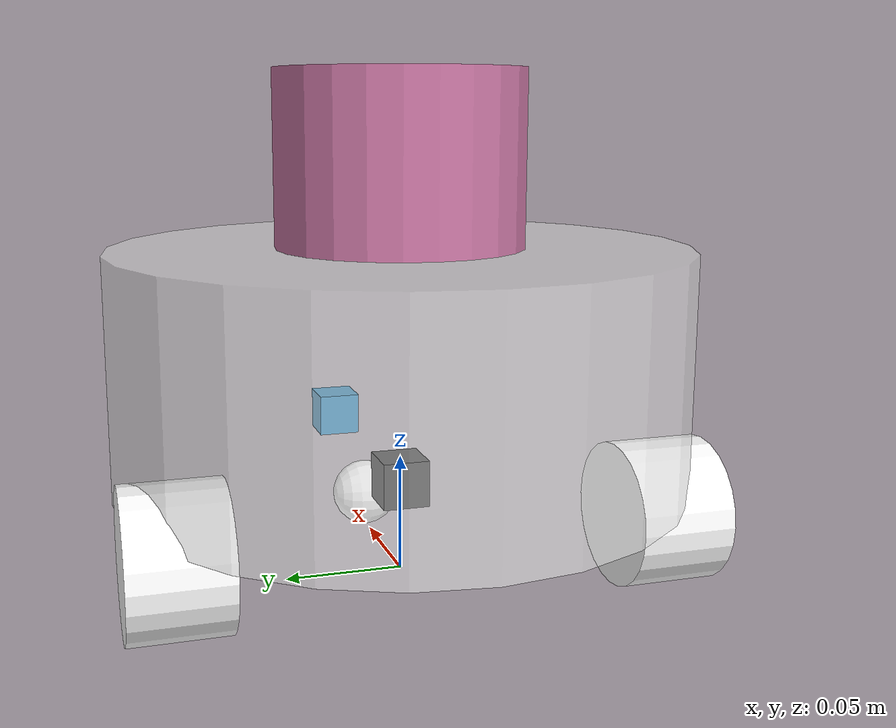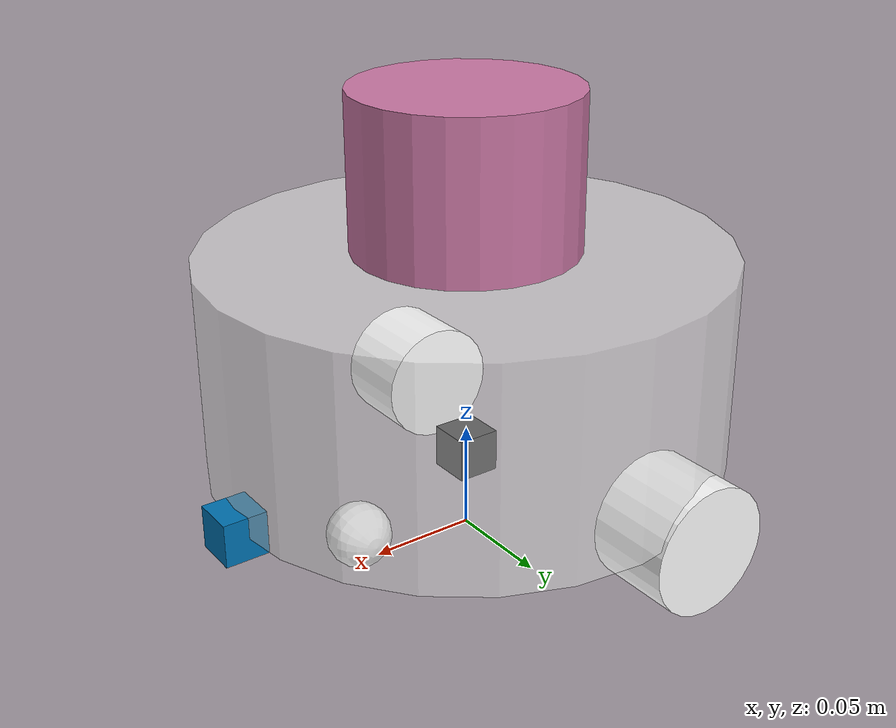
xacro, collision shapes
<?xml version="1.0"?>
<robot xmlns:xacro="http://www.ros.org/wiki/xacro" name="my_car">
  <xacro:include filename="$(find my_car)/urdf/my_car_de/base_link.urdf.xacro" />
  <xacro:include filename="$(find my_car)/urdf/my_car_de/sensor/imu.urdf.xacro" />
  <xacro:include filename="$(find my_car)/urdf/my_car_de/sensor/camera.urdf.xacro" />
  <xacro:include filename="$(find my_car)/urdf/my_car_de/actutor/wheel.urdf.xacro" />
  <xacro:include filename="$(find my_car)/urdf/my_car_de/actutor/caster.urdf.xacro" />
  <xacro:include filename="$(find my_car)/urdf/my_car_de/plugin/gazebo_sensor_plugin.xacro" />
  <xacro:include filename="$(find my_car)/urdf/my_car_de/plugin/gazebo_control_plugin.xacro" />
  <xacro:include filename="$(find my_car)/urdf/velodyne_description/urdf/VLP-16.urdf.xacro" />

  <xacro:base_link length="0.12" radius="0.1" />
  <xacro:wheel wheel_name="left_wheel" xyz="-0.04 0.1 0.03" />
  <xacro:wheel wheel_name="right_wheel" xyz="-0.04 -0.1 0.03" />
  <xacro:caster radius="0.015" xyz="0.06 0 0.015"/>
  <xacro:camera xyz="0.12 0 0.04" />
  <xacro:imu xyz="0 0 0.04" />

  <xacro:gazebo_sensor_plugin/>
  <xacro:gazebo_control_plugin/>
  <xacro:VLP-16 />

</robot>

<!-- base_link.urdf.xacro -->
<robot xmlns:xacro="http://www.ros.org/wiki/xacro" >
    <xacro:include filename="$(find my_car)/urdf/my_car_de/common_inertia.xacro"/>
    <xacro:macro name="base_link" params="length radius">
        <link name="base_link">
            <visual>
                <origin xyz="0 0 0.09" rpy="0 0 0" />
                <geometry>
                    <cylinder radius="${length}" length="${radius}" />
                </geometry>
                <material name="white">
                    <color rgba="1.0 1.0 1.0 0.5" />
                </material>
            </visual>
            <collision>
                <origin xyz="0 0 0.09" rpy="0 0 0" />
                <geometry>
                    <cylinder radius="${length}" length="${radius}" />
                </geometry>
                <material name="white">
                    <color rgba="1.0 1.0 1.0 0.5" />
                </material>
            </collision>
            <xacro:cylinder_inertia m="1.0" r="${radius}" h="${length}"/>
        </link>

    </xacro:macro>
</robot>

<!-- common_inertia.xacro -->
<robot xmlns:xacro="http://www.ros.org/wiki/xacro">
    <xacro:macro  name="box_inertia" params="m w h d">
        <inertial>
            <mass value="${m}"/>
            <inertia ixx="${(m/12)*(h*h+d*d)}" ixy="0.0" ixz="0.0" iyy="${(m/12)*(w*w+d*d)}" iyz="0.0" izz="${(m/12)*(h*h+w*w)}"/>
        </inertial>
    </xacro:macro>

    <xacro:macro  name="cylinder_inertia" params="m r h">
        <inertial>
            <mass value="${m}"/>
            <inertia ixx="${(m/12)*(3*r*r+h*h)}" ixy="0.0" ixz="0.0" iyy="${(m/12)*(3*r*r+h*h)}" iyz="0.0" izz="${(m/2)*(r*r)}"/>
        </inertial>
    </xacro:macro>

    <xacro:macro name="sphere_inertia" params="radius m">
        <inertial>
            <mass value="${m}"/>
            <inertia ixx="${(2/5)*m*(r*r)}" ixy="0.0" ixz="0.0" iyy="${(2/5)*m*(r*r)}" iyz="0.0" izz="${(2/5)*m*(r*r)}"/>
        </inertial>
    </xacro:macro>
</robot>

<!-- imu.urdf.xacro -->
<robot xmlns:xacro="http://www.ros.org/wiki/xacro">
    <xacro:include filename="$(find my_car)/urdf/my_car_de/common_inertia.xacro" />
    <xacro:macro name="imu" params="xyz">
        <link name="imu_link">
            <visual>
                <origin xyz="0 0 0" rpy="0 0 0" />
                <geometry>
                    <box size="0.02 0.02 0.02"/>
                </geometry>
                <material name="black">
                    <color rgba="0.0 0.0 0.0 1.0" />
                </material>
            </visual>
            <collision>
                <origin xyz="0 0 0" rpy="0 0 0" />
                <geometry>
                    <box size="0.02 0.02 0.02" />
                </geometry>
                <material name="black">
                    <color rgba="0.0 0.0 0.0 1.0" />
                </material>
            </collision>
            <xacro:box_inertia m="0.05" w="0.02" h="0.02" d="0.02" />
        </link>
        <joint name="imu_joint" type="fixed">
            <origin xyz="${xyz}"  />
            <parent link="base_link" />
            <child link="imu_link" />
        </joint>
    </xacro:macro>
</robot>

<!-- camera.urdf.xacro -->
<robot xmlns:xacro="http://www.ros.org/wiki/xacro">
    <xacro:include filename="$(find my_car)/urdf/my_car_de/common_inertia.xacro" />
    <xacro:macro name="camera" params="xyz">
        <link name="camera_link">
            <visual>
                <origin xyz="0 0 0" rpy="0 0 0" />
                <geometry>
                    <box size="0.02 0.02 0.02" />
                </geometry>
            </visual>
            <collision>
                <origin xyz="0 0 0" rpy="0 0 0" />
                <geometry>
                    <box size="0.02 0.02 0.02" />
                </geometry>
            </collision>
            <xacro:box_inertia m="0.05" w="0.02" h="0.02" d="0.02" />
        </link>
        <joint name="camera_joint" type="fixed">
            <origin xyz="${xyz}" />
            <parent link="base_link" />
            <child link="camera_link" />
        </joint>
    </xacro:macro>
</robot>

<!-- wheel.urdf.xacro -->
<robot xmlns:xacro="http://www.ros.org/wiki/xacro">
    <xacro:include filename="$(find my_car)/urdf/my_car_de/common_inertia.xacro" />
    <xacro:macro name="wheel" params="wheel_name xyz">
        <link name="${wheel_name}">
            <visual>
                <origin xyz="0 0 0" rpy="1.57079 0 0" />
                <geometry>
                    <cylinder radius="0.03" length="0.04" />
                </geometry>
                <material name="white">
                    <color rgba="1.0 1.0 1.0 1.0" />
                </material>
            </visual>
            <collision>
                <origin xyz="0 0 0" rpy="1.57079 0 0" />
                <geometry>
                    <cylinder radius="0.03" length="0.04" />
                </geometry>
                <material name="white">
                    <color rgba="1.0 1.0 1.0 1.0" />
                </material>
            </collision>
            <xacro:cylinder_inertia m="3.0" r="0.03" h="0.04" />
        </link>
        <joint name="${wheel_name}_joint" type="continuous">
            <origin xyz="${xyz}" rpy="0.0 0.0 0.0" />
            <parent link="base_link" />
            <child link="${wheel_name}" />
            <axis xyz="0.0 1 0.0" />
        </joint>

        <gazebo reference="${wheel_name}">
            <mu1 value="20.0"/>
            <mu2 value="20.0"/>
            <kp value="100000000.0"/>
            <kd value="1.0"/>
        </gazebo>
    </xacro:macro>
</robot>

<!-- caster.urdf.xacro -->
<robot xmlns:xacro="http://www.ros.org/wiki/xacro">
    <xacro:include filename="$(find my_car)/urdf/my_car_de/common_inertia.xacro" />
    <xacro:macro name="caster" params="radius xyz">
        <link name="caster_link">
            <visual>
                <origin xyz="0 0 0" rpy="0 0 0" />
                <geometry>
                        <sphere radius="${radius}"/>
                </geometry>
                <material name="white">

                        <color rgba="1.0 1.0 1.0 1.0" />

                </material>
            </visual>
            <collision>
                <origin xyz="0 0 0" rpy="1.57079 0 0" />
                <geometry>
                    <sphere radius="${radius}"/>
                </geometry>
                <material name="white">
                    <color rgba="1.0 1.0 1.0 1.0" />
                </material>
            </collision>
            <xacro:cylinder_inertia m="1.0" r="0.03" h="0.04"/>
        </link>
        <joint name="caster_joint" type="fixed">
            <origin xyz="${xyz}" rpy="0.0 0.0 0.0" />
            <parent link="base_link" />
            <child link="caster_link" />
        </joint>
        <gazebo reference="caster_link">
            <mu1 value="0.0"/>
            <mu2 value="0.0"/>
            <kp value="100000000.0"/>
            <kd value="1.0"/>
        </gazebo>
    </xacro:macro>
</robot>

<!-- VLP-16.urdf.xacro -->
<robot xmlns:xacro="http://www.ros.org/wiki/xacro" name="VLP-16">
  <xacro:property name="M_PI" value="3.1415926535897931" />
  <xacro:macro name="VLP-16" params="parent:=base_link name:=velodyne tf_prefix:='' topic:=/velodyne_points organize_cloud:=false hz:=10 lasers:=16 samples:=1875 collision_range:=0.3 min_range:=0.9 max_range:=130.0 noise:=0.008 min_angle:=-${M_PI} max_angle:=${M_PI} gpu:=false">

    <joint name="${name}_base_mount_joint" type="fixed">
      <origin xyz="0 0 0.14"/>
      <parent link="${parent}"/>
      <child link="${name}_base_link"/>
    </joint>

    <link name="${name}_base_link">
      <inertial>
        <mass value="0.83"/>
        <origin xyz="0 0 0.03585"/>
        <inertia ixx="${(0.83 * (3.0*0.0516*0.0516 + 0.0717*0.0717)) / 12.0}" ixy="0" ixz="0"
          iyy="${(0.83 * (3.0*0.0516*0.0516 + 0.0717*0.0717)) / 12.0}" iyz="0"
          izz="${0.5 * 0.83 * (0.0516*0.0516)}"/>
      </inertial>
      <visual>
        <geometry>
          <mesh filename="package://velodyne_description/meshes/VLP16_base_1.dae" />
        </geometry>
      </visual>
      <visual>
        <geometry>
          <mesh filename="package://velodyne_description/meshes/VLP16_base_2.dae" />
        </geometry>
      </visual>
      <collision>
        <origin rpy="0 0 0" xyz="0 0 0.03585"/>
        <geometry>
          <cylinder radius="0.0516" length="0.0717"/>
        </geometry>
      </collision>
    </link>

    <joint name="${name}_base_scan_joint" type="fixed" >
      <origin xyz="0 0 0.0377" rpy="0 0 0" />
      <parent link="${name}_base_link" />
      <child link="${name}"/>
    </joint>

    <link name="${name}">
      <inertial>
        <mass value="0.01"/>
        <origin xyz="0 0 0"/>
        <inertia ixx="1e-7" ixy="0" ixz="0" iyy="1e-7" iyz="0" izz="1e-7"/>
      </inertial>
      <visual>
        <origin xyz="0 0 -0.0377" />
        <geometry>
          <mesh filename="package://velodyne_description/meshes/VLP16_scan.dae" />
        </geometry>
      </visual>
      <collision>
        <geometry>
          <sphere radius="0"/>
        </geometry>
      </collision>
    </link>

    <!-- Gazebo requires the velodyne_gazebo_plugins package -->
    <gazebo reference="${name}">
      <xacro:if value="${gpu}">
        <sensor type="gpu_ray" name="${name}-VLP16">
          <pose>0 0 0 0 0 0</pose>
          <visualize>false</visualize>
          <update_rate>${hz}</update_rate>
          <ray>
            <scan>
              <horizontal>
                <samples>${samples}</samples>
                <resolution>1</resolution>
                <min_angle>${min_angle}</min_angle>
                <max_angle>${max_angle}</max_angle>
              </horizontal>
              <vertical>
                <samples>${lasers}</samples>
                <resolution>1</resolution>
                <min_angle>-${15.0*M_PI/180.0}</min_angle>
                <max_angle> ${15.0*M_PI/180.0}</max_angle>
              </vertical>
            </scan>
            <range>
              <min>${collision_range}</min>
              <max>${max_range+1}</max>
              <resolution>0.001</resolution>
            </range>
            <noise>
              <type>gaussian</type>
              <mean>0.0</mean>
              <stddev>0.0</stddev>
            </noise>
          </ray>
          <plugin name="gazebo_ros_laser_controller" filename="libgazebo_ros_velodyne_laser.so">
            <ros>
              <namespace>/${name}</namespace>
              <remapping>~/out:=${topic}</remapping>
            </ros>
            <tf_prefix>${tf_prefix}</tf_prefix>
            <frame_name>${name}</frame_name>
            <organize_cloud>${organize_cloud}</organize_cloud>
            <min_range>${min_range}</min_range>
            <max_range>${max_range}</max_range>
            <gaussian_noise>${noise}</gaussian_noise>
          </plugin>
        </sensor>
      </xacro:if>
      <xacro:unless value="${gpu}">
        <sensor type="ray" name="${name}-VLP16">
          <pose>0 0 0 0 0 0</pose>
          <visualize>false</visualize>
          <update_rate>${hz}</update_rate>
          <ray>
            <scan>
              <horizontal>
                <samples>${samples}</samples>
                <resolution>1</resolution>
                <min_angle>${min_angle}</min_angle>
                <max_angle>${max_angle}</max_angle>
              </horizontal>
              <vertical>
                <samples>${lasers}</samples>
                <resolution>1</resolution>
                <min_angle>-${15.0*M_PI/180.0}</min_angle>
                <max_angle> ${15.0*M_PI/180.0}</max_angle>
              </vertical>
            </scan>
            <range>
              <min>${collision_range}</min>
              <max>${max_range+1}</max>
              <resolution>0.001</resolution>
            </range>
            <noise>
              <type>gaussian</type>
              <mean>0.0</mean>
              <stddev>0.0</stddev>
            </noise>
          </ray>
          <plugin name="gazebo_ros_laser_controller" filename="libgazebo_ros_velodyne_laser.so">
            <ros>
              <namespace>/${name}</namespace>
              <remapping>~/out:=${topic}</remapping>
            </ros>
            <tf_prefix>${tf_prefix}</tf_prefix>
            <frame_name>${name}</frame_name>
            <organize_cloud>${organize_cloud}</organize_cloud>
            <min_range>${min_range}</min_range>
            <max_range>${max_range}</max_range>
            <gaussian_noise>${noise}</gaussian_noise>
          </plugin>
        </sensor>
      </xacro:unless>
    </gazebo>

  </xacro:macro>
</robot>
